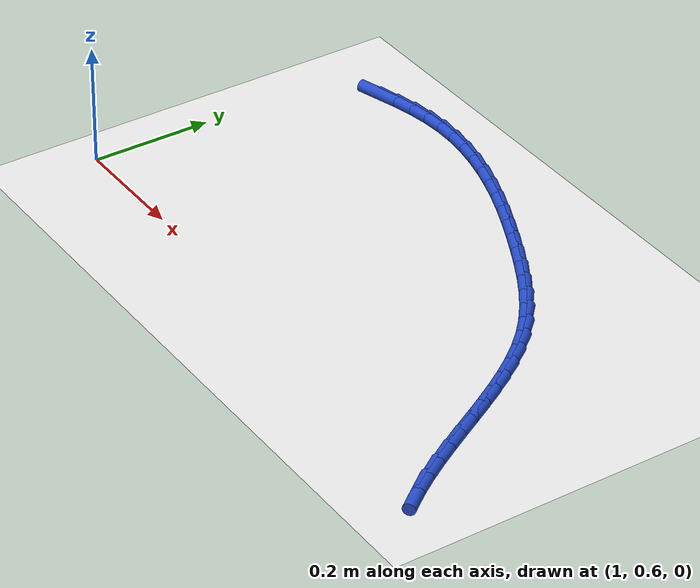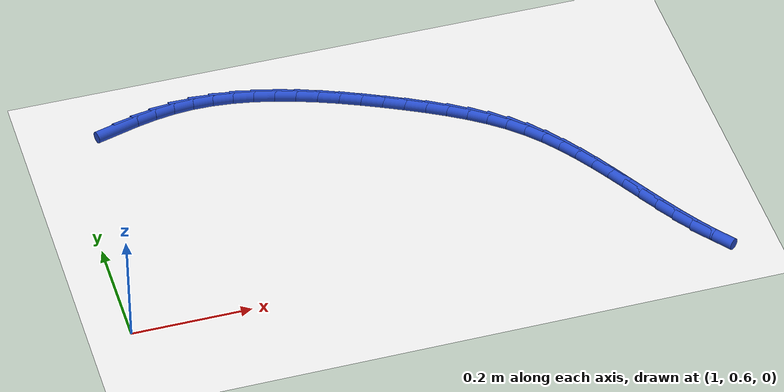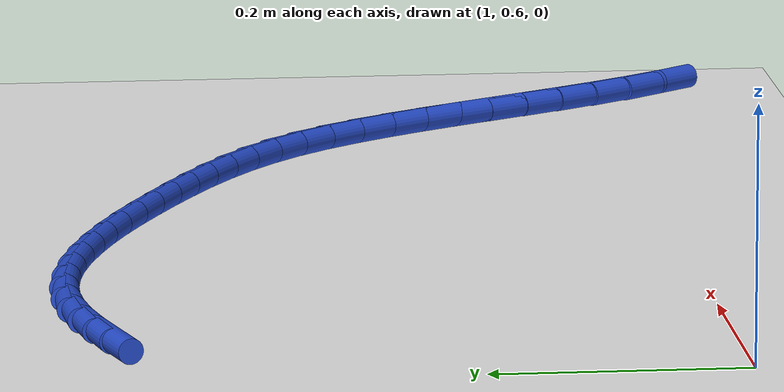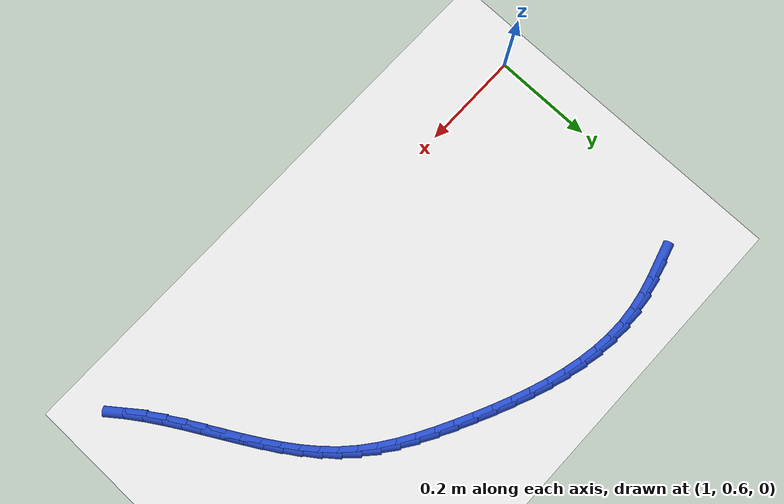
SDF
<sdf version="1.6">
 <world name="default">
  <model name="ground_plane">
   <static>1</static>
   <link name="link">
    <collision name="collision">
     <geometry><plane><normal>0 0 1</normal><size>100 100</size></plane></geometry>
     <surface><friction><ode><mu>100</mu><mu2>50</mu2></ode></friction></surface>
    </collision>
    <visual name="visual">
     <cast_shadows>0</cast_shadows>
     <geometry><plane><normal>0 0 1</normal><size>100 100</size></plane></geometry>
     <material>
      <script><uri>file://media/materials/scripts/gazebo.material</uri><name>Gazebo/WhiteGlow</name></script>
     </material>
    </visual>
   </link>
  </model>
  <model name="line">
   <link name="link_47">
    <pose>1.0938458304287992 1.0706167980331625 0.01 0 1.57 0.2817634108245658</pose>
    <collision name="collision">
     <geometry><cylinder><radius>0.01</radius><length>0.08</length></cylinder></geometry>
    </collision>
    <visual name="visual">
     <material>
      <script><name>Gazebo/Blue</name><uri>file://media/materials/scripts/gazebo.material</uri></script>
     </material>
     <geometry><cylinder><radius>0.01</radius><length>0.08</length></cylinder></geometry>
    </visual>
   </link>
   <link name="link_48">
    <pose>1.1275660230872484 1.0803775973875602 0.01 0 1.57 0.2283268708331586</pose>
    <collision name="collision">
     <geometry><cylinder><radius>0.01</radius><length>0.08</length></cylinder></geometry>
    </collision>
    <visual name="visual">
     <material>
      <script><name>Gazebo/Blue</name><uri>file://media/materials/scripts/gazebo.material</uri></script>
     </material>
     <geometry><cylinder><radius>0.01</radius><length>0.08</length></cylinder></geometry>
    </visual>
   </link>
   <link name="link_49">
    <pose>1.1613300948597822 1.0882236652567254 0.01 0 1.57 0.1582724267237799</pose>
    <collision name="collision">
     <geometry><cylinder><radius>0.01</radius><length>0.08</length></cylinder></geometry>
    </collision>
    <visual name="visual">
     <material>
      <script><name>Gazebo/Blue</name><uri>file://media/materials/scripts/gazebo.material</uri></script>
     </material>
     <geometry><cylinder><radius>0.01</radius><length>0.08</length></cylinder></geometry>
    </visual>
   </link>
   <link name="link_50">
    <pose>1.1952422461341896 1.093636295142392 0.01 0 1.57 0.07204811251900972</pose>
    <collision name="collision">
     <geometry><cylinder><radius>0.01</radius><length>0.08</length></cylinder></geometry>
    </collision>
    <visual name="visual">
     <material>
      <script><name>Gazebo/Blue</name><uri>file://media/materials/scripts/gazebo.material</uri></script>
     </material>
     <geometry><cylinder><radius>0.01</radius><length>0.08</length></cylinder></geometry>
    </visual>
   </link>
   <link name="link_51">
    <pose>1.2294054708929467 1.0961019588439644 0.01 0 1.57 -0.02013495659202029</pose>
    <collision name="collision">
     <geometry><cylinder><radius>0.01</radius><length>0.08</length></cylinder></geometry>
    </collision>
    <visual name="visual">
     <material>
      <script><name>Gazebo/Blue</name><uri>file://media/materials/scripts/gazebo.material</uri></script>
     </material>
     <geometry><cylinder><radius>0.01</radius><length>0.08</length></cylinder></geometry>
    </visual>
   </link>
   <link name="link_52">
    <pose>1.2638526042681257 1.0954082735623876 0.01 0 1.57 -0.10362141719256841</pose>
    <collision name="collision">
     <geometry><cylinder><radius>0.01</radius><length>0.08</length></cylinder></geometry>
    </collision>
    <visual name="visual">
     <material>
      <script><name>Gazebo/Blue</name><uri>file://media/materials/scripts/gazebo.material</uri></script>
     </material>
     <geometry><cylinder><radius>0.01</radius><length>0.08</length></cylinder></geometry>
    </visual>
   </link>
   <link name="link_53">
    <pose>1.2985089958736835 1.091804220522175 0.01 0 1.57 -0.17713580263408576</pose>
    <collision name="collision">
     <geometry><cylinder><radius>0.01</radius><length>0.08</length></cylinder></geometry>
    </collision>
    <visual name="visual">
     <material>
      <script><name>Gazebo/Blue</name><uri>file://media/materials/scripts/gazebo.material</uri></script>
     </material>
     <geometry><cylinder><radius>0.01</radius><length>0.08</length></cylinder></geometry>
    </visual>
   </link>
   <link name="link_54">
    <pose>1.3332908950506261 1.0855778423825249 0.01 0 1.57 -0.24104907224749242</pose>
    <collision name="collision">
     <geometry><cylinder><radius>0.01</radius><length>0.08</length></cylinder></geometry>
    </collision>
    <visual name="visual">
     <material>
      <script><name>Gazebo/Blue</name><uri>file://media/materials/scripts/gazebo.material</uri></script>
     </material>
     <geometry><cylinder><radius>0.01</radius><length>0.08</length></cylinder></geometry>
    </visual>
   </link>
   <link name="link_55">
    <pose>1.3681145511399577 1.0770171818026344 0.01 0 1.57 -0.2959979831827438</pose>
    <collision name="collision">
     <geometry><cylinder><radius>0.01</radius><length>0.08</length></cylinder></geometry>
    </collision>
    <visual name="visual">
     <material>
      <script><name>Gazebo/Blue</name><uri>file://media/materials/scripts/gazebo.material</uri></script>
     </material>
     <geometry><cylinder><radius>0.01</radius><length>0.08</length></cylinder></geometry>
    </visual>
   </link>
   <link name="link_56">
    <pose>1.402896213482683 1.066410281441702 0.01 0 1.57 -0.3427164041190062</pose>
    <collision name="collision">
     <geometry><cylinder><radius>0.01</radius><length>0.08</length></cylinder></geometry>
    </collision>
    <visual name="visual">
     <material>
      <script><name>Gazebo/Blue</name><uri>file://media/materials/scripts/gazebo.material</uri></script>
     </material>
     <geometry><cylinder><radius>0.01</radius><length>0.08</length></cylinder></geometry>
    </visual>
   </link>
   <link name="link_57">
    <pose>1.437552131419807 1.0540451839589244 0.01 0 1.57 -0.381924136392617</pose>
    <collision name="collision">
     <geometry><cylinder><radius>0.01</radius><length>0.08</length></cylinder></geometry>
    </collision>
    <visual name="visual">
     <material>
      <script><name>Gazebo/Blue</name><uri>file://media/materials/scripts/gazebo.material</uri></script>
     </material>
     <geometry><cylinder><radius>0.01</radius><length>0.08</length></cylinder></geometry>
    </visual>
   </link>
   <link name="link_58">
    <pose>1.4719985542923344 1.0402099320135 0.01 0 1.57 -0.4142607019821717</pose>
    <collision name="collision">
     <geometry><cylinder><radius>0.01</radius><length>0.08</length></cylinder></geometry>
    </collision>
    <visual name="visual">
     <material>
      <script><name>Gazebo/Blue</name><uri>file://media/materials/scripts/gazebo.material</uri></script>
     </material>
     <geometry><cylinder><radius>0.01</radius><length>0.08</length></cylinder></geometry>
    </visual>
   </link>
   <link name="link_59">
    <pose>1.5061517314412687 1.0251925682646261 0.01 0 1.57 -0.4402487389170883</pose>
    <collision name="collision">
     <geometry><cylinder><radius>0.01</radius><length>0.08</length></cylinder></geometry>
    </collision>
    <visual name="visual">
     <material>
      <script><name>Gazebo/Blue</name><uri>file://media/materials/scripts/gazebo.material</uri></script>
     </material>
     <geometry><cylinder><radius>0.01</radius><length>0.08</length></cylinder></geometry>
    </visual>
   </link>
   <link name="link_60">
    <pose>1.5399279122076168 1.0092811353715005 0.01 0 1.57 -0.46039853660515717</pose>
    <collision name="collision">
     <geometry><cylinder><radius>0.01</radius><length>0.08</length></cylinder></geometry>
    </collision>
    <visual name="visual">
     <material>
      <script><name>Gazebo/Blue</name><uri>file://media/materials/scripts/gazebo.material</uri></script>
     </material>
     <geometry><cylinder><radius>0.01</radius><length>0.08</length></cylinder></geometry>
    </visual>
   </link>
   <link name="link_61">
    <pose>1.5732417772264704 0.9927592828441077 0.01 0 1.57 -0.48114997031188195</pose>
    <collision name="collision">
     <geometry><cylinder><radius>0.01</radius><length>0.08</length></cylinder></geometry>
    </collision>
    <visual name="visual">
     <material>
      <script><name>Gazebo/Blue</name><uri>file://media/materials/scripts/gazebo.material</uri></script>
     </material>
     <geometry><cylinder><radius>0.01</radius><length>0.08</length></cylinder></geometry>
    </visual>
   </link>
   <link name="link_62">
    <pose>1.6059304304812811 0.9756934073577417 0.01 0 1.57 -0.5117849745100247</pose>
    <collision name="collision">
     <geometry><cylinder><radius>0.01</radius><length>0.08</length></cylinder></geometry>
    </collision>
    <visual name="visual">
     <material>
      <script><name>Gazebo/Blue</name><uri>file://media/materials/scripts/gazebo.material</uri></script>
     </material>
     <geometry><cylinder><radius>0.01</radius><length>0.08</length></cylinder></geometry>
    </visual>
   </link>
   <link name="link_63">
    <pose>1.6377193885459844 0.9578374058790808 0.01 0 1.57 -0.5535942170495342</pose>
    <collision name="collision">
     <geometry><cylinder><radius>0.01</radius><length>0.08</length></cylinder></geometry>
    </collision>
    <visual name="visual">
     <material>
      <script><name>Gazebo/Blue</name><uri>file://media/materials/scripts/gazebo.material</uri></script>
     </material>
     <geometry><cylinder><radius>0.01</radius><length>0.08</length></cylinder></geometry>
    </visual>
   </link>
   <link name="link_64">
    <pose>1.6683255140625266 0.9389209401027706 0.01 0 1.57 -0.6072434281945313</pose>
    <collision name="collision">
     <geometry><cylinder><radius>0.01</radius><length>0.08</length></cylinder></geometry>
    </collision>
    <visual name="visual">
     <material>
      <script><name>Gazebo/Blue</name><uri>file://media/materials/scripts/gazebo.material</uri></script>
     </material>
     <geometry><cylinder><radius>0.01</radius><length>0.08</length></cylinder></geometry>
    </visual>
   </link>
   <link name="link_65">
    <pose>1.697465669672853 0.9186736717234572 0.01 0 1.57 -0.6733050236396557</pose>
    <collision name="collision">
     <geometry><cylinder><radius>0.01</radius><length>0.08</length></cylinder></geometry>
    </collision>
    <visual name="visual">
     <material>
      <script><name>Gazebo/Blue</name><uri>file://media/materials/scripts/gazebo.material</uri></script>
     </material>
     <geometry><cylinder><radius>0.01</radius><length>0.08</length></cylinder></geometry>
    </visual>
   </link>
   <link name="link_66">
    <pose>1.724856718018909 0.8968252624357862 0.01 0 1.57 -0.7518722668167446</pose>
    <collision name="collision">
     <geometry><cylinder><radius>0.01</radius><length>0.08</length></cylinder></geometry>
    </collision>
    <visual name="visual">
     <material>
      <script><name>Gazebo/Blue</name><uri>file://media/materials/scripts/gazebo.material</uri></script>
     </material>
     <geometry><cylinder><radius>0.01</radius><length>0.08</length></cylinder></geometry>
    </visual>
   </link>
   <link name="link_67">
    <pose>1.750219316303033 0.8731087036503689 0.01 0 1.57 -0.8337166668977843</pose>
    <collision name="collision">
     <geometry><cylinder><radius>0.01</radius><length>0.08</length></cylinder></geometry>
    </collision>
    <visual name="visual">
     <material>
      <script><name>Gazebo/Blue</name><uri>file://media/materials/scripts/gazebo.material</uri></script>
     </material>
     <geometry><cylinder><radius>0.01</radius><length>0.08</length></cylinder></geometry>
    </visual>
   </link>
   <link name="link_68">
    <pose>1.7735034813660606 0.8474582492091055 0.01 0 1.57 -0.904082668616848</pose>
    <collision name="collision">
     <geometry><cylinder><radius>0.01</radius><length>0.08</length></cylinder></geometry>
    </collision>
    <visual name="visual">
     <material>
      <script><name>Gazebo/Blue</name><uri>file://media/materials/scripts/gazebo.material</uri></script>
     </material>
     <geometry><cylinder><radius>0.01</radius><length>0.08</length></cylinder></geometry>
    </visual>
   </link>
   <link name="link_69">
    <pose>1.7950157103510191 0.8201209634064917 0.01 0 1.57 -0.9611791766321709</pose>
    <collision name="collision">
     <geometry><cylinder><radius>0.01</radius><length>0.08</length></cylinder></geometry>
    </collision>
    <visual name="visual">
     <material>
      <script><name>Gazebo/Blue</name><uri>file://media/materials/scripts/gazebo.material</uri></script>
     </material>
     <geometry><cylinder><radius>0.01</radius><length>0.08</length></cylinder></geometry>
    </visual>
   </link>
   <link name="link_70">
    <pose>1.8150932793610037 0.7913709189870546 0.01 0 1.57 -1.0050182355404382</pose>
    <collision name="collision">
     <geometry><cylinder><radius>0.01</radius><length>0.08</length></cylinder></geometry>
    </collision>
    <visual name="visual">
     <material>
      <script><name>Gazebo/Blue</name><uri>file://media/materials/scripts/gazebo.material</uri></script>
     </material>
     <geometry><cylinder><radius>0.01</radius><length>0.08</length></cylinder></geometry>
    </visual>
   </link>
   <link name="link_71">
    <pose>1.8340734644991106 0.7614821886953218 0.01 0 1.57 -1.035940557369381</pose>
    <collision name="collision">
     <geometry><cylinder><radius>0.01</radius><length>0.08</length></cylinder></geometry>
    </collision>
    <visual name="visual">
     <material>
      <script><name>Gazebo/Blue</name><uri>file://media/materials/scripts/gazebo.material</uri></script>
     </material>
     <geometry><cylinder><radius>0.01</radius><length>0.08</length></cylinder></geometry>
    </visual>
   </link>
   <link name="link_72">
    <pose>1.8522935418684334 0.7307288452758207 0.01 0 1.57 -1.0543853253514919</pose>
    <collision name="collision">
     <geometry><cylinder><radius>0.01</radius><length>0.08</length></cylinder></geometry>
    </collision>
    <visual name="visual">
     <material>
      <script><name>Gazebo/Blue</name><uri>file://media/materials/scripts/gazebo.material</uri></script>
     </material>
     <geometry><cylinder><radius>0.01</radius><length>0.08</length></cylinder></geometry>
    </visual>
   </link>
   <link name="link_73">
    <pose>1.8700907875720687 0.6993849614730793 0.01 0 1.57 -1.0607434821498594</pose>
    <collision name="collision">
     <geometry><cylinder><radius>0.01</radius><length>0.08</length></cylinder></geometry>
    </collision>
    <visual name="visual">
     <material>
      <script><name>Gazebo/Blue</name><uri>file://media/materials/scripts/gazebo.material</uri></script>
     </material>
     <geometry><cylinder><radius>0.01</radius><length>0.08</length></cylinder></geometry>
    </visual>
   </link>
   <link name="link_74">
    <pose>1.8878024777131106 0.6677246100316243 0.01 0 1.57 -1.0552826306442307</pose>
    <collision name="collision">
     <geometry><cylinder><radius>0.01</radius><length>0.08</length></cylinder></geometry>
    </collision>
    <visual name="visual">
     <material>
      <script><name>Gazebo/Blue</name><uri>file://media/materials/scripts/gazebo.material</uri></script>
     </material>
     <geometry><cylinder><radius>0.01</radius><length>0.08</length></cylinder></geometry>
    </visual>
   </link>
   <link name="link_75">
    <pose>1.9057658883946544 0.6360218636959831 0.01 0 1.57 -1.038128180372248</pose>
    <collision name="collision">
     <geometry><cylinder><radius>0.01</radius><length>0.08</length></cylinder></geometry>
    </collision>
    <visual name="visual">
     <material>
      <script><name>Gazebo/Blue</name><uri>file://media/materials/scripts/gazebo.material</uri></script>
     </material>
     <geometry><cylinder><radius>0.01</radius><length>0.08</length></cylinder></geometry>
    </visual>
   </link>
   <link name="link_76">
    <pose>1.924318295719795 0.6045507952106839 0.01 0 1.57 -1.0092911813417413</pose>
    <collision name="collision">
     <geometry><cylinder><radius>0.01</radius><length>0.08</length></cylinder></geometry>
    </collision>
    <visual name="visual">
     <material>
      <script><name>Gazebo/Blue</name><uri>file://media/materials/scripts/gazebo.material</uri></script>
     </material>
     <geometry><cylinder><radius>0.01</radius><length>0.08</length></cylinder></geometry>
    </visual>
   </link>
   <link name="link_77">
    <pose>1.9437969757916285 0.5735854773202534 0.01 0 1.57 -0.9687406918086677</pose>
    <collision name="collision">
     <geometry><cylinder><radius>0.01</radius><length>0.08</length></cylinder></geometry>
    </collision>
    <visual name="visual">
     <material>
      <script><name>Gazebo/Blue</name><uri>file://media/materials/scripts/gazebo.material</uri></script>
     </material>
     <geometry><cylinder><radius>0.01</radius><length>0.08</length></cylinder></geometry>
    </visual>
   </link>
   <link name="link_78">
    <pose>1.96453920471325 0.5433999827692196 0.01 0 1.57 -0.916523797508042</pose>
    <collision name="collision">
     <geometry><cylinder><radius>0.01</radius><length>0.08</length></cylinder></geometry>
    </collision>
    <visual name="visual">
     <material>
      <script><name>Gazebo/Blue</name><uri>file://media/materials/scripts/gazebo.material</uri></script>
     </material>
     <geometry><cylinder><radius>0.01</radius><length>0.08</length></cylinder></geometry>
    </visual>
   </link>
  </model>
 </world>
</sdf>
